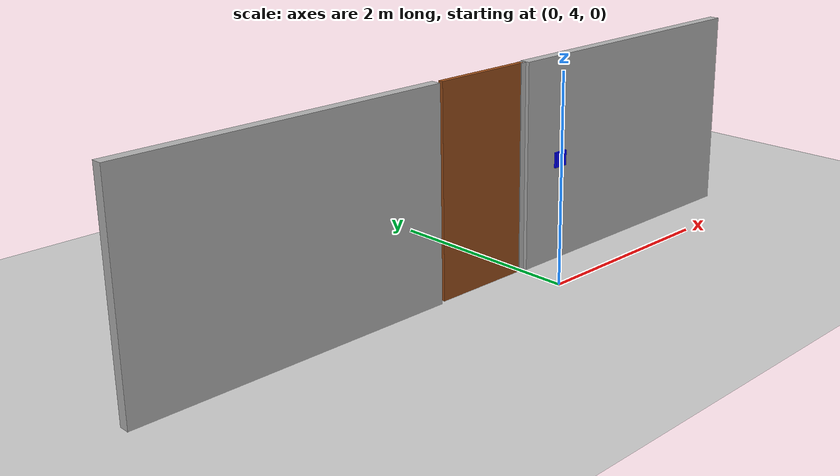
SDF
<?xml version="1.0" ?>
<sdf version="1.6">
  <world name="default">
    <plugin filename="ignition-gazebo-physics-system" name="ignition::gazebo::systems::Physics"/>
    <plugin filename="ignition-gazebo-user-commands-system" name="ignition::gazebo::systems::UserCommands"/>
    <plugin filename="ignition-gazebo-scene-broadcaster-system" name="ignition::gazebo::systems::SceneBroadcaster"/>
    <plugin filename="ignition-gazebo-sensors-system" name="ignition::gazebo::systems::Sensors"/>
    <plugin filename="ignition-gazebo-contact-system" name="ignition::gazebo::systems::Contact"/>

    <physics type="ode">
      <real_time_update_rate>333.0</real_time_update_rate>
      <max_step_size>0.003</max_step_size>
      <ode><solver><type>quick</type><iters>100</iters></solver></ode>
    </physics>

    <light name="sun" type="directional">
      <pose>0 0 10 0 0 0</pose>
      <diffuse>0.8 0.8 0.8 1</diffuse>
      <direction>-0.5 0.1 -0.9</direction>
    </light>

    <model name="ground_plane">
      <static>true</static>
      <link name="link">
        <collision name="collision"><geometry><plane><normal>0 0 1</normal><size>20 20</size></plane></geometry></collision>
        <visual name="visual"><geometry><plane><normal>0 0 1</normal><size>20 20</size></plane></geometry>
          <material><ambient>0.8 0.8 0.8 1</ambient><diffuse>0.8 0.8 0.8 1</diffuse></material>
        </visual>
      </link>
    </model>

    <model name="hallway_wall_left">
      <static>true</static>
      <pose>-2.6 4.5 1.0 0 0 0</pose>
      <link name="link">
        <collision name="col"><geometry><box><size>3.1 0.1 2.0</size></box></geometry></collision>
        <visual name="vis"><geometry><box><size>3.1 0.1 2.0</size></box></geometry>
          <material><ambient>0.5 0.5 0.5 1</ambient><diffuse>0.7 0.7 0.7 1</diffuse></material>
        </visual>
      </link>
    </model>

    <model name="hallway_wall_right">
      <static>true</static>
      <pose>1.55 4.5 1.0 0 0 0</pose>
      <link name="link">
        <collision name="col"><geometry><box><size>3.0 0.1 2.0</size></box></geometry></collision>
        <visual name="vis"><geometry><box><size>3.0 0.1 2.0</size></box></geometry>
          <material><ambient>0.5 0.5 0.5 1</ambient><diffuse>0.7 0.7 0.7 1</diffuse></material>
        </visual>
      </link>
    </model>

    <!-- Door now positioned at X=0 (right side of opening), hinge on right, opens away -->
    <model name="handicap_door">
      <pose>0.0 4.5 1.0 0 0 0</pose>

      <link name="door_frame">
        <visual name="v"><geometry><box><size>0.06 0.06 2.0</size></box></geometry></visual>
      </link>

      <link name="door_leaf">
        <inertial><mass>1.0</mass><inertia><ixx>0.1</ixx><iyy>0.1</iyy><izz>0.1</izz></inertia></inertial>
        <!-- Shift collision/visual to -0.5 (negative X) so hinge is on right edge -->
        <collision name="leaf_col"><pose>-0.5 0 0 0 0 0</pose><geometry><box><size>1.0 0.05 2.0</size></box></geometry></collision>
        <visual name="leaf_vis"><pose>-0.5 0 0 0 0 0</pose><geometry><box><size>1.0 0.05 2.0</size></box></geometry>
          <material><ambient>0.6 0.3 0.1 1</ambient><diffuse>0.6 0.3 0.1 1</diffuse></material>
        </visual>
      </link>

      <joint name="door_hinge" type="revolute">
        <parent>door_frame</parent>
        <child>door_leaf</child>
        <axis>
          <xyz>0 0 1</xyz>
          <limit>
            <!-- Changed: now -1.57 to 0 so it opens in negative rotation (away from robot) -->
            <lower>-1.57</lower>
            <upper>0.0</upper>
            <velocity>0.6</velocity>
            <effort>20</effort>
          </limit>
          <dynamics>
            <damping>5.0</damping>
            <friction>0.1</friction>
          </dynamics>
        </axis>
      </joint>

      <joint name="world_fix" type="fixed"><parent>world</parent><child>door_frame</child></joint>

      <plugin filename="ignition-gazebo-joint-state-publisher-system" name="ignition::gazebo::systems::JointStatePublisher"/>
      <plugin filename="ignition-gazebo-joint-position-controller-system" name="ignition::gazebo::systems::JointPositionController">
        <joint_name>door_hinge</joint_name>
        <topic>/model/handicap_door/door_cmd</topic>
        <p_gain>100</p_gain>
        <i_gain>1</i_gain>
        <d_gain>10</d_gain>
      </plugin>
    </model>

    <!-- Button on right side of doorway, before the door -->
    <model name="ada_button">
      <static>true</static>
      <pose>0.5 4.44 1.0 0 0 0</pose>
      <link name="link">
        <visual name="v"><geometry><box><size>0.15 0.02 0.15</size></box></geometry>
          <material><ambient>0 0 1 1</ambient><diffuse>0 0 1 1</diffuse></material>
        </visual>
        <collision name="button_collision"><geometry><box><size>0.15 0.02 0.15</size></box></geometry></collision>
        <sensor name="button_contact_sensor" type="contact"><contact><collision>button_collision</collision></contact></sensor>
      </link>

      <plugin filename="ignition-gazebo-touchplugin-system" name="ignition::gazebo::systems::TouchPlugin">
        <target>hsrb</target>
        <namespace>button_logic</namespace>
        <time>0.01</time>
        <enabled>true</enabled>
      </plugin>

    </model>
  </world>
</sdf>
